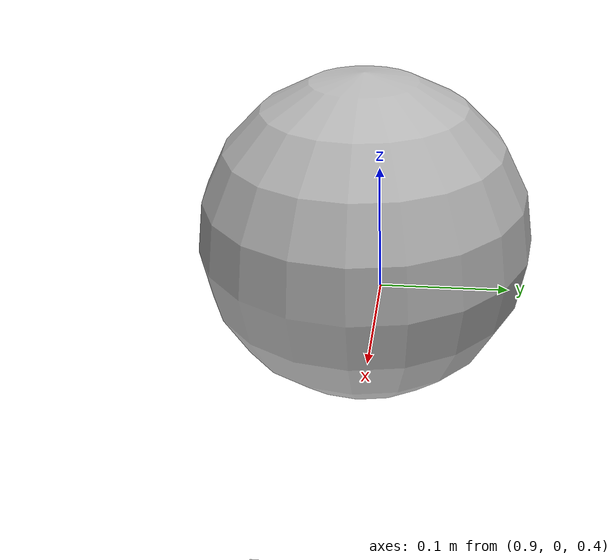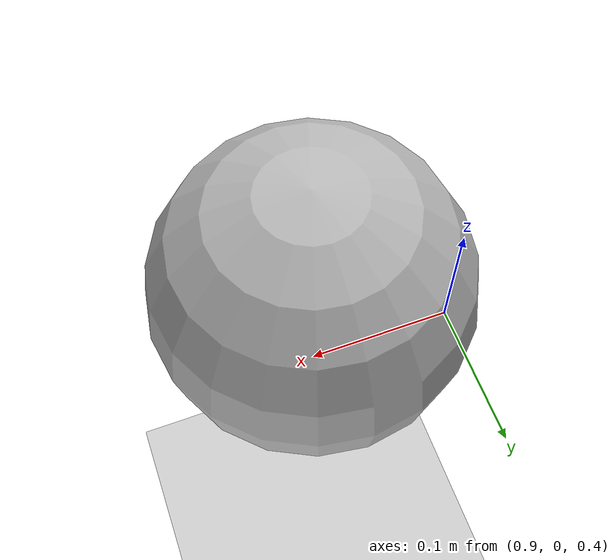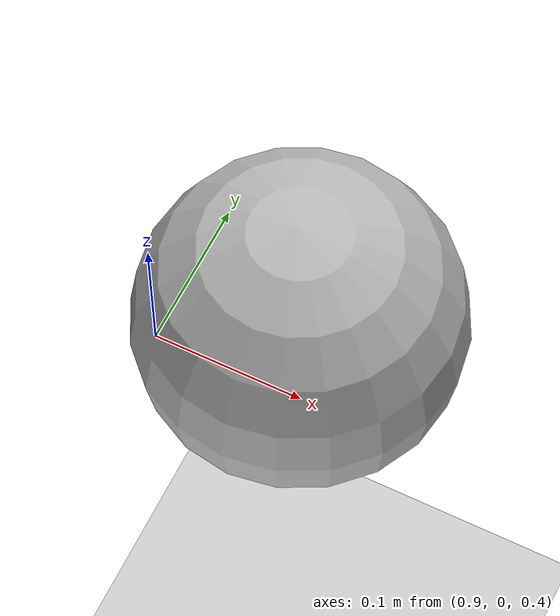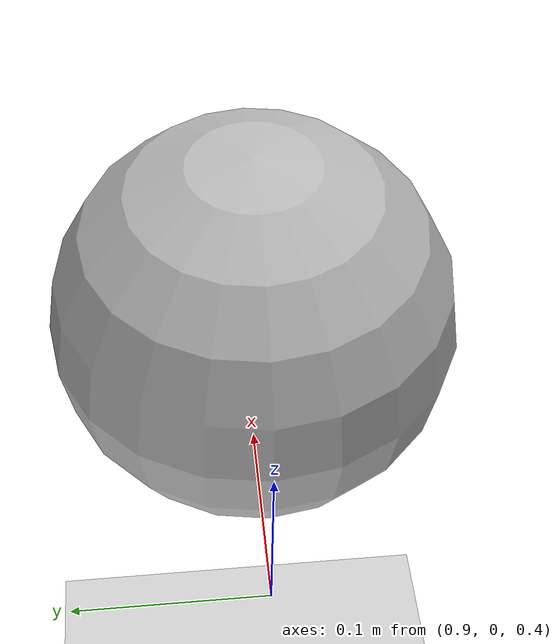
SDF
<?xml version="1.0" ?>
<sdf version='1.4'>

  <world name='default'>
    <light name='sun' type='directional'>
      <cast_shadows>1</cast_shadows>
      <pose>0 0 10 0 -0 0</pose>
      <diffuse>0.8 0.8 0.8 1</diffuse>
      <specular>0.2 0.2 0.2 1</specular>
      <attenuation>
        <range>1000</range>
        <constant>0.9</constant>
        <linear>0.01</linear>
        <quadratic>0.001</quadratic>
      </attenuation>
      <direction>0.5 0.1 -0.9</direction>
    </light>
    <scene>
      <ambient>0.4 0.4 0.4 1</ambient>
      <background>0.7 0.7 0.7 1</background>
      <shadows>1</shadows>
    </scene>
    <physics type='ode'>
      <max_step_size>0.01</max_step_size>
      <real_time_factor>1</real_time_factor>
      <real_time_update_rate>100</real_time_update_rate>
      <gravity>0 0 -9.8</gravity>
    </physics>

    <include>
      <uri>model://ground_plane</uri>
    </include>

<model name="sphereS1">
      <static>true</static>
      <pose>1 0 0.5 0 0 0</pose>
      <link name="link">
        <collision name="collision">
          <geometry>
            <sphere>
              <radius>.1 </radius>
            </sphere>
          </geometry>
        </collision>
        <visual name="visual">
          <geometry>
            <sphere>
              <radius>.1 </radius>
            </sphere>
          </geometry>
        </visual>
      </link>
      <plugin name="sample" filename="libgazebo_rosPosePublisher.so">
          <topicName> /test/sphere/pose </topicName>
          <frameName> directionalityTest-sphereS1 </frameName>
      </plugin>
      <plugin name = 'settingPose' filename = "libSetPoseforObjects.so"/>
    </model>

  </world>
</sdf>
